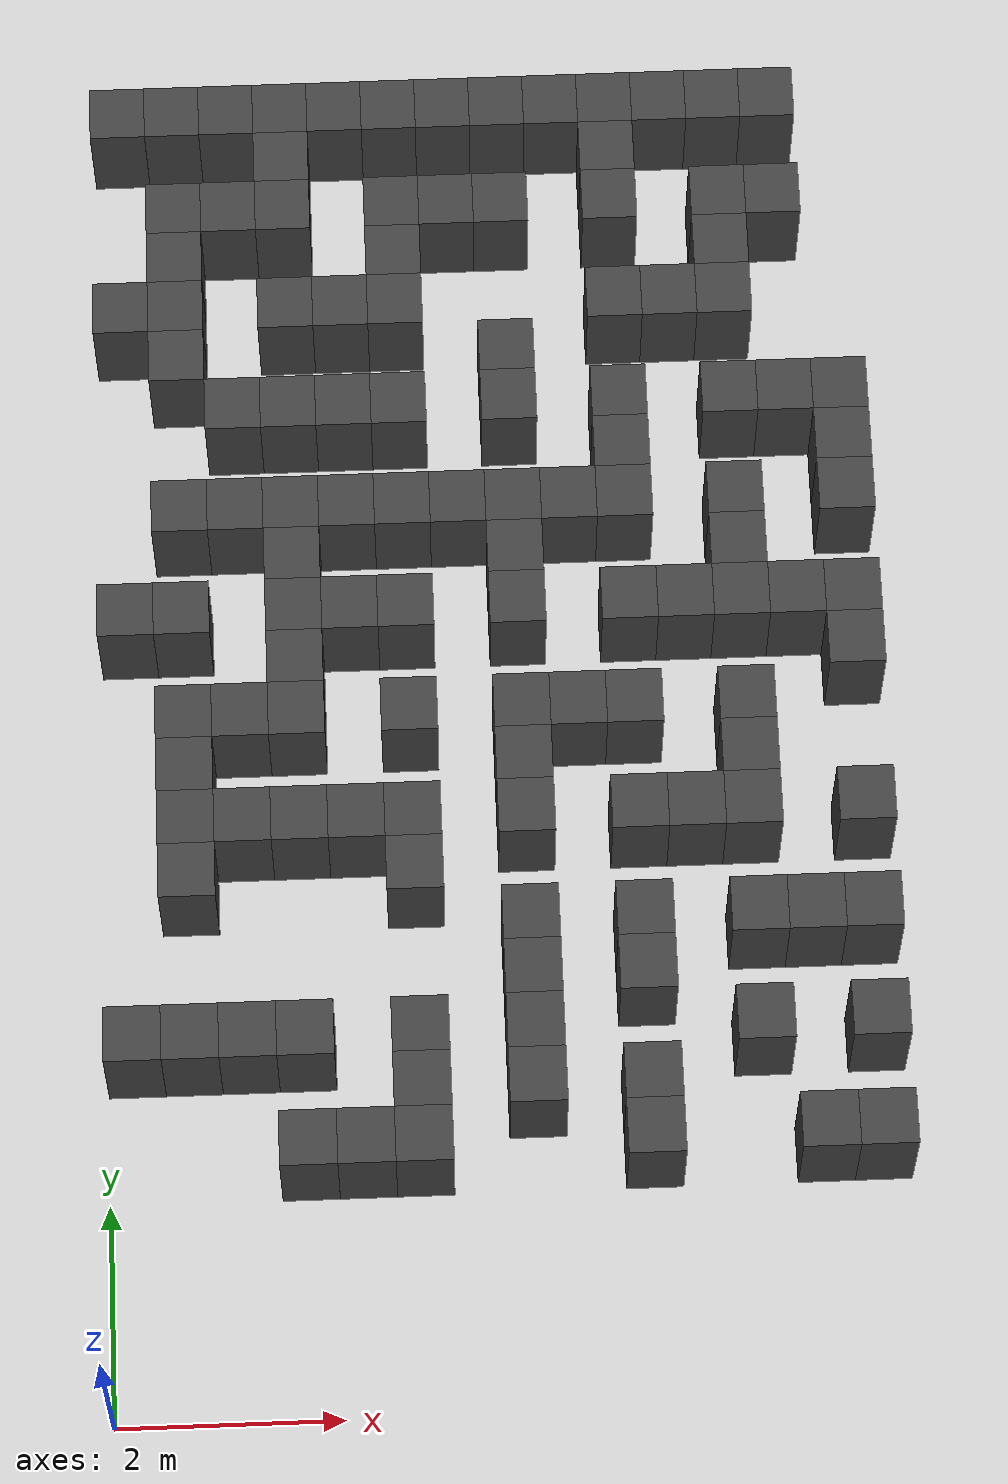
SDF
<sdf version="1.7">
 <world name="map_15497">
  <model name="ground_plane">
   <static>true</static>
   <link name="link">
    <collision name="collision">
     <geometry><plane><normal>0 0 1</normal><size>200 200</size></plane></geometry>
    </collision>
    <visual name="visual">
     <geometry><plane><normal>0 0 1</normal><size>200 200</size></plane></geometry>
     <material><ambient>0.8 0.8 0.8 1</ambient><diffuse>0.8 0.8 0.8 1</diffuse></material>
    </visual>
   </link>
  </model>
  <model name="maze_environment">
   <static>true</static>
   <link name="wall_25">
    <pose>0.250 12.250 0.500 0 0 0</pose>
    <collision name="col"><geometry><box><size>0.5 0.5 1.0</size></box></geometry></collision>
    <visual name="vis">
     <geometry><box><size>0.5 0.5 1.0</size></box></geometry>
     <material><ambient>0.15 0.15 0.15 1</ambient><diffuse>0.25 0.25 0.25 1</diffuse></material>
    </visual>
   </link>
   <link name="wall_26">
    <pose>0.750 12.250 0.500 0 0 0</pose>
    <collision name="col"><geometry><box><size>0.5 0.5 1.0</size></box></geometry></collision>
    <visual name="vis">
     <geometry><box><size>0.5 0.5 1.0</size></box></geometry>
     <material><ambient>0.15 0.15 0.15 1</ambient><diffuse>0.25 0.25 0.25 1</diffuse></material>
    </visual>
   </link>
   <link name="wall_27">
    <pose>1.250 12.250 0.500 0 0 0</pose>
    <collision name="col"><geometry><box><size>0.5 0.5 1.0</size></box></geometry></collision>
    <visual name="vis">
     <geometry><box><size>0.5 0.5 1.0</size></box></geometry>
     <material><ambient>0.15 0.15 0.15 1</ambient><diffuse>0.25 0.25 0.25 1</diffuse></material>
    </visual>
   </link>
   <link name="wall_28">
    <pose>1.750 12.250 0.500 0 0 0</pose>
    <collision name="col"><geometry><box><size>0.5 0.5 1.0</size></box></geometry></collision>
    <visual name="vis">
     <geometry><box><size>0.5 0.5 1.0</size></box></geometry>
     <material><ambient>0.15 0.15 0.15 1</ambient><diffuse>0.25 0.25 0.25 1</diffuse></material>
    </visual>
   </link>
   <link name="wall_29">
    <pose>2.250 12.250 0.500 0 0 0</pose>
    <collision name="col"><geometry><box><size>0.5 0.5 1.0</size></box></geometry></collision>
    <visual name="vis">
     <geometry><box><size>0.5 0.5 1.0</size></box></geometry>
     <material><ambient>0.15 0.15 0.15 1</ambient><diffuse>0.25 0.25 0.25 1</diffuse></material>
    </visual>
   </link>
   <link name="wall_30">
    <pose>2.750 12.250 0.500 0 0 0</pose>
    <collision name="col"><geometry><box><size>0.5 0.5 1.0</size></box></geometry></collision>
    <visual name="vis">
     <geometry><box><size>0.5 0.5 1.0</size></box></geometry>
     <material><ambient>0.15 0.15 0.15 1</ambient><diffuse>0.25 0.25 0.25 1</diffuse></material>
    </visual>
   </link>
   <link name="wall_31">
    <pose>3.250 12.250 0.500 0 0 0</pose>
    <collision name="col"><geometry><box><size>0.5 0.5 1.0</size></box></geometry></collision>
    <visual name="vis">
     <geometry><box><size>0.5 0.5 1.0</size></box></geometry>
     <material><ambient>0.15 0.15 0.15 1</ambient><diffuse>0.25 0.25 0.25 1</diffuse></material>
    </visual>
   </link>
   <link name="wall_32">
    <pose>3.750 12.250 0.500 0 0 0</pose>
    <collision name="col"><geometry><box><size>0.5 0.5 1.0</size></box></geometry></collision>
    <visual name="vis">
     <geometry><box><size>0.5 0.5 1.0</size></box></geometry>
     <material><ambient>0.15 0.15 0.15 1</ambient><diffuse>0.25 0.25 0.25 1</diffuse></material>
    </visual>
   </link>
   <link name="wall_33">
    <pose>4.250 12.250 0.500 0 0 0</pose>
    <collision name="col"><geometry><box><size>0.5 0.5 1.0</size></box></geometry></collision>
    <visual name="vis">
     <geometry><box><size>0.5 0.5 1.0</size></box></geometry>
     <material><ambient>0.15 0.15 0.15 1</ambient><diffuse>0.25 0.25 0.25 1</diffuse></material>
    </visual>
   </link>
   <link name="wall_34">
    <pose>4.750 12.250 0.500 0 0 0</pose>
    <collision name="col"><geometry><box><size>0.5 0.5 1.0</size></box></geometry></collision>
    <visual name="vis">
     <geometry><box><size>0.5 0.5 1.0</size></box></geometry>
     <material><ambient>0.15 0.15 0.15 1</ambient><diffuse>0.25 0.25 0.25 1</diffuse></material>
    </visual>
   </link>
   <link name="wall_35">
    <pose>5.250 12.250 0.500 0 0 0</pose>
    <collision name="col"><geometry><box><size>0.5 0.5 1.0</size></box></geometry></collision>
    <visual name="vis">
     <geometry><box><size>0.5 0.5 1.0</size></box></geometry>
     <material><ambient>0.15 0.15 0.15 1</ambient><diffuse>0.25 0.25 0.25 1</diffuse></material>
    </visual>
   </link>
   <link name="wall_36">
    <pose>5.750 12.250 0.500 0 0 0</pose>
    <collision name="col"><geometry><box><size>0.5 0.5 1.0</size></box></geometry></collision>
    <visual name="vis">
     <geometry><box><size>0.5 0.5 1.0</size></box></geometry>
     <material><ambient>0.15 0.15 0.15 1</ambient><diffuse>0.25 0.25 0.25 1</diffuse></material>
    </visual>
   </link>
   <link name="wall_37">
    <pose>6.250 12.250 0.500 0 0 0</pose>
    <collision name="col"><geometry><box><size>0.5 0.5 1.0</size></box></geometry></collision>
    <visual name="vis">
     <geometry><box><size>0.5 0.5 1.0</size></box></geometry>
     <material><ambient>0.15 0.15 0.15 1</ambient><diffuse>0.25 0.25 0.25 1</diffuse></material>
    </visual>
   </link>
   <link name="wall_54">
    <pose>1.750 11.750 0.500 0 0 0</pose>
    <collision name="col"><geometry><box><size>0.5 0.5 1.0</size></box></geometry></collision>
    <visual name="vis">
     <geometry><box><size>0.5 0.5 1.0</size></box></geometry>
     <material><ambient>0.15 0.15 0.15 1</ambient><diffuse>0.25 0.25 0.25 1</diffuse></material>
    </visual>
   </link>
   <link name="wall_55">
    <pose>4.750 11.750 0.500 0 0 0</pose>
    <collision name="col"><geometry><box><size>0.5 0.5 1.0</size></box></geometry></collision>
    <visual name="vis">
     <geometry><box><size>0.5 0.5 1.0</size></box></geometry>
     <material><ambient>0.15 0.15 0.15 1</ambient><diffuse>0.25 0.25 0.25 1</diffuse></material>
    </visual>
   </link>
   <link name="wall_75">
    <pose>0.750 11.250 0.500 0 0 0</pose>
    <collision name="col"><geometry><box><size>0.5 0.5 1.0</size></box></geometry></collision>
    <visual name="vis">
     <geometry><box><size>0.5 0.5 1.0</size></box></geometry>
     <material><ambient>0.15 0.15 0.15 1</ambient><diffuse>0.25 0.25 0.25 1</diffuse></material>
    </visual>
   </link>
   <link name="wall_76">
    <pose>1.250 11.250 0.500 0 0 0</pose>
    <collision name="col"><geometry><box><size>0.5 0.5 1.0</size></box></geometry></collision>
    <visual name="vis">
     <geometry><box><size>0.5 0.5 1.0</size></box></geometry>
     <material><ambient>0.15 0.15 0.15 1</ambient><diffuse>0.25 0.25 0.25 1</diffuse></material>
    </visual>
   </link>
   <link name="wall_77">
    <pose>1.750 11.250 0.500 0 0 0</pose>
    <collision name="col"><geometry><box><size>0.5 0.5 1.0</size></box></geometry></collision>
    <visual name="vis">
     <geometry><box><size>0.5 0.5 1.0</size></box></geometry>
     <material><ambient>0.15 0.15 0.15 1</ambient><diffuse>0.25 0.25 0.25 1</diffuse></material>
    </visual>
   </link>
   <link name="wall_78">
    <pose>2.750 11.250 0.500 0 0 0</pose>
    <collision name="col"><geometry><box><size>0.5 0.5 1.0</size></box></geometry></collision>
    <visual name="vis">
     <geometry><box><size>0.5 0.5 1.0</size></box></geometry>
     <material><ambient>0.15 0.15 0.15 1</ambient><diffuse>0.25 0.25 0.25 1</diffuse></material>
    </visual>
   </link>
   <link name="wall_79">
    <pose>3.250 11.250 0.500 0 0 0</pose>
    <collision name="col"><geometry><box><size>0.5 0.5 1.0</size></box></geometry></collision>
    <visual name="vis">
     <geometry><box><size>0.5 0.5 1.0</size></box></geometry>
     <material><ambient>0.15 0.15 0.15 1</ambient><diffuse>0.25 0.25 0.25 1</diffuse></material>
    </visual>
   </link>
   <link name="wall_80">
    <pose>3.750 11.250 0.500 0 0 0</pose>
    <collision name="col"><geometry><box><size>0.5 0.5 1.0</size></box></geometry></collision>
    <visual name="vis">
     <geometry><box><size>0.5 0.5 1.0</size></box></geometry>
     <material><ambient>0.15 0.15 0.15 1</ambient><diffuse>0.25 0.25 0.25 1</diffuse></material>
    </visual>
   </link>
   <link name="wall_81">
    <pose>4.750 11.250 0.500 0 0 0</pose>
    <collision name="col"><geometry><box><size>0.5 0.5 1.0</size></box></geometry></collision>
    <visual name="vis">
     <geometry><box><size>0.5 0.5 1.0</size></box></geometry>
     <material><ambient>0.15 0.15 0.15 1</ambient><diffuse>0.25 0.25 0.25 1</diffuse></material>
    </visual>
   </link>
   <link name="wall_82">
    <pose>5.750 11.250 0.500 0 0 0</pose>
    <collision name="col"><geometry><box><size>0.5 0.5 1.0</size></box></geometry></collision>
    <visual name="vis">
     <geometry><box><size>0.5 0.5 1.0</size></box></geometry>
     <material><ambient>0.15 0.15 0.15 1</ambient><diffuse>0.25 0.25 0.25 1</diffuse></material>
    </visual>
   </link>
   <link name="wall_83">
    <pose>6.250 11.250 0.500 0 0 0</pose>
    <collision name="col"><geometry><box><size>0.5 0.5 1.0</size></box></geometry></collision>
    <visual name="vis">
     <geometry><box><size>0.5 0.5 1.0</size></box></geometry>
     <material><ambient>0.15 0.15 0.15 1</ambient><diffuse>0.25 0.25 0.25 1</diffuse></material>
    </visual>
   </link>
   <link name="wall_97">
    <pose>0.750 10.750 0.500 0 0 0</pose>
    <collision name="col"><geometry><box><size>0.5 0.5 1.0</size></box></geometry></collision>
    <visual name="vis">
     <geometry><box><size>0.5 0.5 1.0</size></box></geometry>
     <material><ambient>0.15 0.15 0.15 1</ambient><diffuse>0.25 0.25 0.25 1</diffuse></material>
    </visual>
   </link>
   <link name="wall_98">
    <pose>2.750 10.750 0.500 0 0 0</pose>
    <collision name="col"><geometry><box><size>0.5 0.5 1.0</size></box></geometry></collision>
    <visual name="vis">
     <geometry><box><size>0.5 0.5 1.0</size></box></geometry>
     <material><ambient>0.15 0.15 0.15 1</ambient><diffuse>0.25 0.25 0.25 1</diffuse></material>
    </visual>
   </link>
   <link name="wall_99">
    <pose>5.750 10.750 0.500 0 0 0</pose>
    <collision name="col"><geometry><box><size>0.5 0.5 1.0</size></box></geometry></collision>
    <visual name="vis">
     <geometry><box><size>0.5 0.5 1.0</size></box></geometry>
     <material><ambient>0.15 0.15 0.15 1</ambient><diffuse>0.25 0.25 0.25 1</diffuse></material>
    </visual>
   </link>
   <link name="wall_123">
    <pose>0.250 10.250 0.500 0 0 0</pose>
    <collision name="col"><geometry><box><size>0.5 0.5 1.0</size></box></geometry></collision>
    <visual name="vis">
     <geometry><box><size>0.5 0.5 1.0</size></box></geometry>
     <material><ambient>0.15 0.15 0.15 1</ambient><diffuse>0.25 0.25 0.25 1</diffuse></material>
    </visual>
   </link>
   <link name="wall_124">
    <pose>0.750 10.250 0.500 0 0 0</pose>
    <collision name="col"><geometry><box><size>0.5 0.5 1.0</size></box></geometry></collision>
    <visual name="vis">
     <geometry><box><size>0.5 0.5 1.0</size></box></geometry>
     <material><ambient>0.15 0.15 0.15 1</ambient><diffuse>0.25 0.25 0.25 1</diffuse></material>
    </visual>
   </link>
   <link name="wall_125">
    <pose>1.750 10.250 0.500 0 0 0</pose>
    <collision name="col"><geometry><box><size>0.5 0.5 1.0</size></box></geometry></collision>
    <visual name="vis">
     <geometry><box><size>0.5 0.5 1.0</size></box></geometry>
     <material><ambient>0.15 0.15 0.15 1</ambient><diffuse>0.25 0.25 0.25 1</diffuse></material>
    </visual>
   </link>
   <link name="wall_126">
    <pose>2.250 10.250 0.500 0 0 0</pose>
    <collision name="col"><geometry><box><size>0.5 0.5 1.0</size></box></geometry></collision>
    <visual name="vis">
     <geometry><box><size>0.5 0.5 1.0</size></box></geometry>
     <material><ambient>0.15 0.15 0.15 1</ambient><diffuse>0.25 0.25 0.25 1</diffuse></material>
    </visual>
   </link>
   <link name="wall_127">
    <pose>2.750 10.250 0.500 0 0 0</pose>
    <collision name="col"><geometry><box><size>0.5 0.5 1.0</size></box></geometry></collision>
    <visual name="vis">
     <geometry><box><size>0.5 0.5 1.0</size></box></geometry>
     <material><ambient>0.15 0.15 0.15 1</ambient><diffuse>0.25 0.25 0.25 1</diffuse></material>
    </visual>
   </link>
   <link name="wall_128">
    <pose>4.750 10.250 0.500 0 0 0</pose>
    <collision name="col"><geometry><box><size>0.5 0.5 1.0</size></box></geometry></collision>
    <visual name="vis">
     <geometry><box><size>0.5 0.5 1.0</size></box></geometry>
     <material><ambient>0.15 0.15 0.15 1</ambient><diffuse>0.25 0.25 0.25 1</diffuse></material>
    </visual>
   </link>
   <link name="wall_129">
    <pose>5.250 10.250 0.500 0 0 0</pose>
    <collision name="col"><geometry><box><size>0.5 0.5 1.0</size></box></geometry></collision>
    <visual name="vis">
     <geometry><box><size>0.5 0.5 1.0</size></box></geometry>
     <material><ambient>0.15 0.15 0.15 1</ambient><diffuse>0.25 0.25 0.25 1</diffuse></material>
    </visual>
   </link>
   <link name="wall_130">
    <pose>5.750 10.250 0.500 0 0 0</pose>
    <collision name="col"><geometry><box><size>0.5 0.5 1.0</size></box></geometry></collision>
    <visual name="vis">
     <geometry><box><size>0.5 0.5 1.0</size></box></geometry>
     <material><ambient>0.15 0.15 0.15 1</ambient><diffuse>0.25 0.25 0.25 1</diffuse></material>
    </visual>
   </link>
   <link name="wall_143">
    <pose>0.750 9.750 0.500 0 0 0</pose>
    <collision name="col"><geometry><box><size>0.5 0.5 1.0</size></box></geometry></collision>
    <visual name="vis">
     <geometry><box><size>0.5 0.5 1.0</size></box></geometry>
     <material><ambient>0.15 0.15 0.15 1</ambient><diffuse>0.25 0.25 0.25 1</diffuse></material>
    </visual>
   </link>
   <link name="wall_144">
    <pose>3.750 9.750 0.500 0 0 0</pose>
    <collision name="col"><geometry><box><size>0.5 0.5 1.0</size></box></geometry></collision>
    <visual name="vis">
     <geometry><box><size>0.5 0.5 1.0</size></box></geometry>
     <material><ambient>0.15 0.15 0.15 1</ambient><diffuse>0.25 0.25 0.25 1</diffuse></material>
    </visual>
   </link>
   <link name="wall_169">
    <pose>1.250 9.250 0.500 0 0 0</pose>
    <collision name="col"><geometry><box><size>0.5 0.5 1.0</size></box></geometry></collision>
    <visual name="vis">
     <geometry><box><size>0.5 0.5 1.0</size></box></geometry>
     <material><ambient>0.15 0.15 0.15 1</ambient><diffuse>0.25 0.25 0.25 1</diffuse></material>
    </visual>
   </link>
   <link name="wall_170">
    <pose>1.750 9.250 0.500 0 0 0</pose>
    <collision name="col"><geometry><box><size>0.5 0.5 1.0</size></box></geometry></collision>
    <visual name="vis">
     <geometry><box><size>0.5 0.5 1.0</size></box></geometry>
     <material><ambient>0.15 0.15 0.15 1</ambient><diffuse>0.25 0.25 0.25 1</diffuse></material>
    </visual>
   </link>
   <link name="wall_171">
    <pose>2.250 9.250 0.500 0 0 0</pose>
    <collision name="col"><geometry><box><size>0.5 0.5 1.0</size></box></geometry></collision>
    <visual name="vis">
     <geometry><box><size>0.5 0.5 1.0</size></box></geometry>
     <material><ambient>0.15 0.15 0.15 1</ambient><diffuse>0.25 0.25 0.25 1</diffuse></material>
    </visual>
   </link>
   <link name="wall_172">
    <pose>2.750 9.250 0.500 0 0 0</pose>
    <collision name="col"><geometry><box><size>0.5 0.5 1.0</size></box></geometry></collision>
    <visual name="vis">
     <geometry><box><size>0.5 0.5 1.0</size></box></geometry>
     <material><ambient>0.15 0.15 0.15 1</ambient><diffuse>0.25 0.25 0.25 1</diffuse></material>
    </visual>
   </link>
   <link name="wall_173">
    <pose>3.750 9.250 0.500 0 0 0</pose>
    <collision name="col"><geometry><box><size>0.5 0.5 1.0</size></box></geometry></collision>
    <visual name="vis">
     <geometry><box><size>0.5 0.5 1.0</size></box></geometry>
     <material><ambient>0.15 0.15 0.15 1</ambient><diffuse>0.25 0.25 0.25 1</diffuse></material>
    </visual>
   </link>
   <link name="wall_174">
    <pose>4.750 9.250 0.500 0 0 0</pose>
    <collision name="col"><geometry><box><size>0.5 0.5 1.0</size></box></geometry></collision>
    <visual name="vis">
     <geometry><box><size>0.5 0.5 1.0</size></box></geometry>
     <material><ambient>0.15 0.15 0.15 1</ambient><diffuse>0.25 0.25 0.25 1</diffuse></material>
    </visual>
   </link>
   <link name="wall_175">
    <pose>5.750 9.250 0.500 0 0 0</pose>
    <collision name="col"><geometry><box><size>0.5 0.5 1.0</size></box></geometry></collision>
    <visual name="vis">
     <geometry><box><size>0.5 0.5 1.0</size></box></geometry>
     <material><ambient>0.15 0.15 0.15 1</ambient><diffuse>0.25 0.25 0.25 1</diffuse></material>
    </visual>
   </link>
   <link name="wall_176">
    <pose>6.250 9.250 0.500 0 0 0</pose>
    <collision name="col"><geometry><box><size>0.5 0.5 1.0</size></box></geometry></collision>
    <visual name="vis">
     <geometry><box><size>0.5 0.5 1.0</size></box></geometry>
     <material><ambient>0.15 0.15 0.15 1</ambient><diffuse>0.25 0.25 0.25 1</diffuse></material>
    </visual>
   </link>
   <link name="wall_177">
    <pose>6.750 9.250 0.500 0 0 0</pose>
    <collision name="col"><geometry><box><size>0.5 0.5 1.0</size></box></geometry></collision>
    <visual name="vis">
     <geometry><box><size>0.5 0.5 1.0</size></box></geometry>
     <material><ambient>0.15 0.15 0.15 1</ambient><diffuse>0.25 0.25 0.25 1</diffuse></material>
    </visual>
   </link>
   <link name="wall_190">
    <pose>4.750 8.750 0.500 0 0 0</pose>
    <collision name="col"><geometry><box><size>0.5 0.5 1.0</size></box></geometry></collision>
    <visual name="vis">
     <geometry><box><size>0.5 0.5 1.0</size></box></geometry>
     <material><ambient>0.15 0.15 0.15 1</ambient><diffuse>0.25 0.25 0.25 1</diffuse></material>
    </visual>
   </link>
   <link name="wall_191">
    <pose>6.750 8.750 0.500 0 0 0</pose>
    <collision name="col"><geometry><box><size>0.5 0.5 1.0</size></box></geometry></collision>
    <visual name="vis">
     <geometry><box><size>0.5 0.5 1.0</size></box></geometry>
     <material><ambient>0.15 0.15 0.15 1</ambient><diffuse>0.25 0.25 0.25 1</diffuse></material>
    </visual>
   </link>
   <link name="wall_212">
    <pose>0.750 8.250 0.500 0 0 0</pose>
    <collision name="col"><geometry><box><size>0.5 0.5 1.0</size></box></geometry></collision>
    <visual name="vis">
     <geometry><box><size>0.5 0.5 1.0</size></box></geometry>
     <material><ambient>0.15 0.15 0.15 1</ambient><diffuse>0.25 0.25 0.25 1</diffuse></material>
    </visual>
   </link>
   <link name="wall_213">
    <pose>1.250 8.250 0.500 0 0 0</pose>
    <collision name="col"><geometry><box><size>0.5 0.5 1.0</size></box></geometry></collision>
    <visual name="vis">
     <geometry><box><size>0.5 0.5 1.0</size></box></geometry>
     <material><ambient>0.15 0.15 0.15 1</ambient><diffuse>0.25 0.25 0.25 1</diffuse></material>
    </visual>
   </link>
   <link name="wall_214">
    <pose>1.750 8.250 0.500 0 0 0</pose>
    <collision name="col"><geometry><box><size>0.5 0.5 1.0</size></box></geometry></collision>
    <visual name="vis">
     <geometry><box><size>0.5 0.5 1.0</size></box></geometry>
     <material><ambient>0.15 0.15 0.15 1</ambient><diffuse>0.25 0.25 0.25 1</diffuse></material>
    </visual>
   </link>
   <link name="wall_215">
    <pose>2.250 8.250 0.500 0 0 0</pose>
    <collision name="col"><geometry><box><size>0.5 0.5 1.0</size></box></geometry></collision>
    <visual name="vis">
     <geometry><box><size>0.5 0.5 1.0</size></box></geometry>
     <material><ambient>0.15 0.15 0.15 1</ambient><diffuse>0.25 0.25 0.25 1</diffuse></material>
    </visual>
   </link>
   <link name="wall_216">
    <pose>2.750 8.250 0.500 0 0 0</pose>
    <collision name="col"><geometry><box><size>0.5 0.5 1.0</size></box></geometry></collision>
    <visual name="vis">
     <geometry><box><size>0.5 0.5 1.0</size></box></geometry>
     <material><ambient>0.15 0.15 0.15 1</ambient><diffuse>0.25 0.25 0.25 1</diffuse></material>
    </visual>
   </link>
   <link name="wall_217">
    <pose>3.250 8.250 0.500 0 0 0</pose>
    <collision name="col"><geometry><box><size>0.5 0.5 1.0</size></box></geometry></collision>
    <visual name="vis">
     <geometry><box><size>0.5 0.5 1.0</size></box></geometry>
     <material><ambient>0.15 0.15 0.15 1</ambient><diffuse>0.25 0.25 0.25 1</diffuse></material>
    </visual>
   </link>
   <link name="wall_218">
    <pose>3.750 8.250 0.500 0 0 0</pose>
    <collision name="col"><geometry><box><size>0.5 0.5 1.0</size></box></geometry></collision>
    <visual name="vis">
     <geometry><box><size>0.5 0.5 1.0</size></box></geometry>
     <material><ambient>0.15 0.15 0.15 1</ambient><diffuse>0.25 0.25 0.25 1</diffuse></material>
    </visual>
   </link>
   <link name="wall_219">
    <pose>4.250 8.250 0.500 0 0 0</pose>
    <collision name="col"><geometry><box><size>0.5 0.5 1.0</size></box></geometry></collision>
    <visual name="vis">
     <geometry><box><size>0.5 0.5 1.0</size></box></geometry>
     <material><ambient>0.15 0.15 0.15 1</ambient><diffuse>0.25 0.25 0.25 1</diffuse></material>
    </visual>
   </link>
   <link name="wall_220">
    <pose>4.750 8.250 0.500 0 0 0</pose>
    <collision name="col"><geometry><box><size>0.5 0.5 1.0</size></box></geometry></collision>
    <visual name="vis">
     <geometry><box><size>0.5 0.5 1.0</size></box></geometry>
     <material><ambient>0.15 0.15 0.15 1</ambient><diffuse>0.25 0.25 0.25 1</diffuse></material>
    </visual>
   </link>
   <link name="wall_221">
    <pose>5.750 8.250 0.500 0 0 0</pose>
    <collision name="col"><geometry><box><size>0.5 0.5 1.0</size></box></geometry></collision>
    <visual name="vis">
     <geometry><box><size>0.5 0.5 1.0</size></box></geometry>
     <material><ambient>0.15 0.15 0.15 1</ambient><diffuse>0.25 0.25 0.25 1</diffuse></material>
    </visual>
   </link>
   <link name="wall_222">
    <pose>6.750 8.250 0.500 0 0 0</pose>
    <collision name="col"><geometry><box><size>0.5 0.5 1.0</size></box></geometry></collision>
    <visual name="vis">
     <geometry><box><size>0.5 0.5 1.0</size></box></geometry>
     <material><ambient>0.15 0.15 0.15 1</ambient><diffuse>0.25 0.25 0.25 1</diffuse></material>
    </visual>
   </link>
   <link name="wall_233">
    <pose>1.750 7.750 0.500 0 0 0</pose>
    <collision name="col"><geometry><box><size>0.5 0.5 1.0</size></box></geometry></collision>
    <visual name="vis">
     <geometry><box><size>0.5 0.5 1.0</size></box></geometry>
     <material><ambient>0.15 0.15 0.15 1</ambient><diffuse>0.25 0.25 0.25 1</diffuse></material>
    </visual>
   </link>
   <link name="wall_234">
    <pose>3.750 7.750 0.500 0 0 0</pose>
    <collision name="col"><geometry><box><size>0.5 0.5 1.0</size></box></geometry></collision>
    <visual name="vis">
     <geometry><box><size>0.5 0.5 1.0</size></box></geometry>
     <material><ambient>0.15 0.15 0.15 1</ambient><diffuse>0.25 0.25 0.25 1</diffuse></material>
    </visual>
   </link>
   <link name="wall_235">
    <pose>5.750 7.750 0.500 0 0 0</pose>
    <collision name="col"><geometry><box><size>0.5 0.5 1.0</size></box></geometry></collision>
    <visual name="vis">
     <geometry><box><size>0.5 0.5 1.0</size></box></geometry>
     <material><ambient>0.15 0.15 0.15 1</ambient><diffuse>0.25 0.25 0.25 1</diffuse></material>
    </visual>
   </link>
   <link name="wall_253">
    <pose>0.250 7.250 0.500 0 0 0</pose>
    <collision name="col"><geometry><box><size>0.5 0.5 1.0</size></box></geometry></collision>
    <visual name="vis">
     <geometry><box><size>0.5 0.5 1.0</size></box></geometry>
     <material><ambient>0.15 0.15 0.15 1</ambient><diffuse>0.25 0.25 0.25 1</diffuse></material>
    </visual>
   </link>
   <link name="wall_254">
    <pose>0.750 7.250 0.500 0 0 0</pose>
    <collision name="col"><geometry><box><size>0.5 0.5 1.0</size></box></geometry></collision>
    <visual name="vis">
     <geometry><box><size>0.5 0.5 1.0</size></box></geometry>
     <material><ambient>0.15 0.15 0.15 1</ambient><diffuse>0.25 0.25 0.25 1</diffuse></material>
    </visual>
   </link>
   <link name="wall_255">
    <pose>1.750 7.250 0.500 0 0 0</pose>
    <collision name="col"><geometry><box><size>0.5 0.5 1.0</size></box></geometry></collision>
    <visual name="vis">
     <geometry><box><size>0.5 0.5 1.0</size></box></geometry>
     <material><ambient>0.15 0.15 0.15 1</ambient><diffuse>0.25 0.25 0.25 1</diffuse></material>
    </visual>
   </link>
   <link name="wall_256">
    <pose>2.250 7.250 0.500 0 0 0</pose>
    <collision name="col"><geometry><box><size>0.5 0.5 1.0</size></box></geometry></collision>
    <visual name="vis">
     <geometry><box><size>0.5 0.5 1.0</size></box></geometry>
     <material><ambient>0.15 0.15 0.15 1</ambient><diffuse>0.25 0.25 0.25 1</diffuse></material>
    </visual>
   </link>
   <link name="wall_257">
    <pose>2.750 7.250 0.500 0 0 0</pose>
    <collision name="col"><geometry><box><size>0.5 0.5 1.0</size></box></geometry></collision>
    <visual name="vis">
     <geometry><box><size>0.5 0.5 1.0</size></box></geometry>
     <material><ambient>0.15 0.15 0.15 1</ambient><diffuse>0.25 0.25 0.25 1</diffuse></material>
    </visual>
   </link>
   <link name="wall_258">
    <pose>3.750 7.250 0.500 0 0 0</pose>
    <collision name="col"><geometry><box><size>0.5 0.5 1.0</size></box></geometry></collision>
    <visual name="vis">
     <geometry><box><size>0.5 0.5 1.0</size></box></geometry>
     <material><ambient>0.15 0.15 0.15 1</ambient><diffuse>0.25 0.25 0.25 1</diffuse></material>
    </visual>
   </link>
   <link name="wall_259">
    <pose>4.750 7.250 0.500 0 0 0</pose>
    <collision name="col"><geometry><box><size>0.5 0.5 1.0</size></box></geometry></collision>
    <visual name="vis">
     <geometry><box><size>0.5 0.5 1.0</size></box></geometry>
     <material><ambient>0.15 0.15 0.15 1</ambient><diffuse>0.25 0.25 0.25 1</diffuse></material>
    </visual>
   </link>
   <link name="wall_260">
    <pose>5.250 7.250 0.500 0 0 0</pose>
    <collision name="col"><geometry><box><size>0.5 0.5 1.0</size></box></geometry></collision>
    <visual name="vis">
     <geometry><box><size>0.5 0.5 1.0</size></box></geometry>
     <material><ambient>0.15 0.15 0.15 1</ambient><diffuse>0.25 0.25 0.25 1</diffuse></material>
    </visual>
   </link>
   <link name="wall_261">
    <pose>5.750 7.250 0.500 0 0 0</pose>
    <collision name="col"><geometry><box><size>0.5 0.5 1.0</size></box></geometry></collision>
    <visual name="vis">
     <geometry><box><size>0.5 0.5 1.0</size></box></geometry>
     <material><ambient>0.15 0.15 0.15 1</ambient><diffuse>0.25 0.25 0.25 1</diffuse></material>
    </visual>
   </link>
   <link name="wall_262">
    <pose>6.250 7.250 0.500 0 0 0</pose>
    <collision name="col"><geometry><box><size>0.5 0.5 1.0</size></box></geometry></collision>
    <visual name="vis">
     <geometry><box><size>0.5 0.5 1.0</size></box></geometry>
     <material><ambient>0.15 0.15 0.15 1</ambient><diffuse>0.25 0.25 0.25 1</diffuse></material>
    </visual>
   </link>
   <link name="wall_263">
    <pose>6.750 7.250 0.500 0 0 0</pose>
    <collision name="col"><geometry><box><size>0.5 0.5 1.0</size></box></geometry></collision>
    <visual name="vis">
     <geometry><box><size>0.5 0.5 1.0</size></box></geometry>
     <material><ambient>0.15 0.15 0.15 1</ambient><diffuse>0.25 0.25 0.25 1</diffuse></material>
    </visual>
   </link>
   <link name="wall_278">
    <pose>1.750 6.750 0.500 0 0 0</pose>
    <collision name="col"><geometry><box><size>0.5 0.5 1.0</size></box></geometry></collision>
    <visual name="vis">
     <geometry><box><size>0.5 0.5 1.0</size></box></geometry>
     <material><ambient>0.15 0.15 0.15 1</ambient><diffuse>0.25 0.25 0.25 1</diffuse></material>
    </visual>
   </link>
   <link name="wall_279">
    <pose>6.750 6.750 0.500 0 0 0</pose>
    <collision name="col"><geometry><box><size>0.5 0.5 1.0</size></box></geometry></collision>
    <visual name="vis">
     <geometry><box><size>0.5 0.5 1.0</size></box></geometry>
     <material><ambient>0.15 0.15 0.15 1</ambient><diffuse>0.25 0.25 0.25 1</diffuse></material>
    </visual>
   </link>
   <link name="wall_304">
    <pose>0.750 6.250 0.500 0 0 0</pose>
    <collision name="col"><geometry><box><size>0.5 0.5 1.0</size></box></geometry></collision>
    <visual name="vis">
     <geometry><box><size>0.5 0.5 1.0</size></box></geometry>
     <material><ambient>0.15 0.15 0.15 1</ambient><diffuse>0.25 0.25 0.25 1</diffuse></material>
    </visual>
   </link>
   <link name="wall_305">
    <pose>1.250 6.250 0.500 0 0 0</pose>
    <collision name="col"><geometry><box><size>0.5 0.5 1.0</size></box></geometry></collision>
    <visual name="vis">
     <geometry><box><size>0.5 0.5 1.0</size></box></geometry>
     <material><ambient>0.15 0.15 0.15 1</ambient><diffuse>0.25 0.25 0.25 1</diffuse></material>
    </visual>
   </link>
   <link name="wall_306">
    <pose>1.750 6.250 0.500 0 0 0</pose>
    <collision name="col"><geometry><box><size>0.5 0.5 1.0</size></box></geometry></collision>
    <visual name="vis">
     <geometry><box><size>0.5 0.5 1.0</size></box></geometry>
     <material><ambient>0.15 0.15 0.15 1</ambient><diffuse>0.25 0.25 0.25 1</diffuse></material>
    </visual>
   </link>
   <link name="wall_307">
    <pose>2.750 6.250 0.500 0 0 0</pose>
    <collision name="col"><geometry><box><size>0.5 0.5 1.0</size></box></geometry></collision>
    <visual name="vis">
     <geometry><box><size>0.5 0.5 1.0</size></box></geometry>
     <material><ambient>0.15 0.15 0.15 1</ambient><diffuse>0.25 0.25 0.25 1</diffuse></material>
    </visual>
   </link>
   <link name="wall_308">
    <pose>3.750 6.250 0.500 0 0 0</pose>
    <collision name="col"><geometry><box><size>0.5 0.5 1.0</size></box></geometry></collision>
    <visual name="vis">
     <geometry><box><size>0.5 0.5 1.0</size></box></geometry>
     <material><ambient>0.15 0.15 0.15 1</ambient><diffuse>0.25 0.25 0.25 1</diffuse></material>
    </visual>
   </link>
   <link name="wall_309">
    <pose>4.250 6.250 0.500 0 0 0</pose>
    <collision name="col"><geometry><box><size>0.5 0.5 1.0</size></box></geometry></collision>
    <visual name="vis">
     <geometry><box><size>0.5 0.5 1.0</size></box></geometry>
     <material><ambient>0.15 0.15 0.15 1</ambient><diffuse>0.25 0.25 0.25 1</diffuse></material>
    </visual>
   </link>
   <link name="wall_310">
    <pose>4.750 6.250 0.500 0 0 0</pose>
    <collision name="col"><geometry><box><size>0.5 0.5 1.0</size></box></geometry></collision>
    <visual name="vis">
     <geometry><box><size>0.5 0.5 1.0</size></box></geometry>
     <material><ambient>0.15 0.15 0.15 1</ambient><diffuse>0.25 0.25 0.25 1</diffuse></material>
    </visual>
   </link>
   <link name="wall_311">
    <pose>5.750 6.250 0.500 0 0 0</pose>
    <collision name="col"><geometry><box><size>0.5 0.5 1.0</size></box></geometry></collision>
    <visual name="vis">
     <geometry><box><size>0.5 0.5 1.0</size></box></geometry>
     <material><ambient>0.15 0.15 0.15 1</ambient><diffuse>0.25 0.25 0.25 1</diffuse></material>
    </visual>
   </link>
   <link name="wall_327">
    <pose>0.750 5.750 0.500 0 0 0</pose>
    <collision name="col"><geometry><box><size>0.5 0.5 1.0</size></box></geometry></collision>
    <visual name="vis">
     <geometry><box><size>0.5 0.5 1.0</size></box></geometry>
     <material><ambient>0.15 0.15 0.15 1</ambient><diffuse>0.25 0.25 0.25 1</diffuse></material>
    </visual>
   </link>
   <link name="wall_328">
    <pose>3.750 5.750 0.500 0 0 0</pose>
    <collision name="col"><geometry><box><size>0.5 0.5 1.0</size></box></geometry></collision>
    <visual name="vis">
     <geometry><box><size>0.5 0.5 1.0</size></box></geometry>
     <material><ambient>0.15 0.15 0.15 1</ambient><diffuse>0.25 0.25 0.25 1</diffuse></material>
    </visual>
   </link>
   <link name="wall_329">
    <pose>5.750 5.750 0.500 0 0 0</pose>
    <collision name="col"><geometry><box><size>0.5 0.5 1.0</size></box></geometry></collision>
    <visual name="vis">
     <geometry><box><size>0.5 0.5 1.0</size></box></geometry>
     <material><ambient>0.15 0.15 0.15 1</ambient><diffuse>0.25 0.25 0.25 1</diffuse></material>
    </visual>
   </link>
   <link name="wall_349">
    <pose>0.750 5.250 0.500 0 0 0</pose>
    <collision name="col"><geometry><box><size>0.5 0.5 1.0</size></box></geometry></collision>
    <visual name="vis">
     <geometry><box><size>0.5 0.5 1.0</size></box></geometry>
     <material><ambient>0.15 0.15 0.15 1</ambient><diffuse>0.25 0.25 0.25 1</diffuse></material>
    </visual>
   </link>
   <link name="wall_350">
    <pose>1.250 5.250 0.500 0 0 0</pose>
    <collision name="col"><geometry><box><size>0.5 0.5 1.0</size></box></geometry></collision>
    <visual name="vis">
     <geometry><box><size>0.5 0.5 1.0</size></box></geometry>
     <material><ambient>0.15 0.15 0.15 1</ambient><diffuse>0.25 0.25 0.25 1</diffuse></material>
    </visual>
   </link>
   <link name="wall_351">
    <pose>1.750 5.250 0.500 0 0 0</pose>
    <collision name="col"><geometry><box><size>0.5 0.5 1.0</size></box></geometry></collision>
    <visual name="vis">
     <geometry><box><size>0.5 0.5 1.0</size></box></geometry>
     <material><ambient>0.15 0.15 0.15 1</ambient><diffuse>0.25 0.25 0.25 1</diffuse></material>
    </visual>
   </link>
   <link name="wall_352">
    <pose>2.250 5.250 0.500 0 0 0</pose>
    <collision name="col"><geometry><box><size>0.5 0.5 1.0</size></box></geometry></collision>
    <visual name="vis">
     <geometry><box><size>0.5 0.5 1.0</size></box></geometry>
     <material><ambient>0.15 0.15 0.15 1</ambient><diffuse>0.25 0.25 0.25 1</diffuse></material>
    </visual>
   </link>
   <link name="wall_353">
    <pose>2.750 5.250 0.500 0 0 0</pose>
    <collision name="col"><geometry><box><size>0.5 0.5 1.0</size></box></geometry></collision>
    <visual name="vis">
     <geometry><box><size>0.5 0.5 1.0</size></box></geometry>
     <material><ambient>0.15 0.15 0.15 1</ambient><diffuse>0.25 0.25 0.25 1</diffuse></material>
    </visual>
   </link>
   <link name="wall_354">
    <pose>3.750 5.250 0.500 0 0 0</pose>
    <collision name="col"><geometry><box><size>0.5 0.5 1.0</size></box></geometry></collision>
    <visual name="vis">
     <geometry><box><size>0.5 0.5 1.0</size></box></geometry>
     <material><ambient>0.15 0.15 0.15 1</ambient><diffuse>0.25 0.25 0.25 1</diffuse></material>
    </visual>
   </link>
   <link name="wall_355">
    <pose>4.750 5.250 0.500 0 0 0</pose>
    <collision name="col"><geometry><box><size>0.5 0.5 1.0</size></box></geometry></collision>
    <visual name="vis">
     <geometry><box><size>0.5 0.5 1.0</size></box></geometry>
     <material><ambient>0.15 0.15 0.15 1</ambient><diffuse>0.25 0.25 0.25 1</diffuse></material>
    </visual>
   </link>
   <link name="wall_356">
    <pose>5.250 5.250 0.500 0 0 0</pose>
    <collision name="col"><geometry><box><size>0.5 0.5 1.0</size></box></geometry></collision>
    <visual name="vis">
     <geometry><box><size>0.5 0.5 1.0</size></box></geometry>
     <material><ambient>0.15 0.15 0.15 1</ambient><diffuse>0.25 0.25 0.25 1</diffuse></material>
    </visual>
   </link>
   <link name="wall_357">
    <pose>5.750 5.250 0.500 0 0 0</pose>
    <collision name="col"><geometry><box><size>0.5 0.5 1.0</size></box></geometry></collision>
    <visual name="vis">
     <geometry><box><size>0.5 0.5 1.0</size></box></geometry>
     <material><ambient>0.15 0.15 0.15 1</ambient><diffuse>0.25 0.25 0.25 1</diffuse></material>
    </visual>
   </link>
   <link name="wall_358">
    <pose>6.750 5.250 0.500 0 0 0</pose>
    <collision name="col"><geometry><box><size>0.5 0.5 1.0</size></box></geometry></collision>
    <visual name="vis">
     <geometry><box><size>0.5 0.5 1.0</size></box></geometry>
     <material><ambient>0.15 0.15 0.15 1</ambient><diffuse>0.25 0.25 0.25 1</diffuse></material>
    </visual>
   </link>
   <link name="wall_374">
    <pose>0.750 4.750 0.500 0 0 0</pose>
    <collision name="col"><geometry><box><size>0.5 0.5 1.0</size></box></geometry></collision>
    <visual name="vis">
     <geometry><box><size>0.5 0.5 1.0</size></box></geometry>
     <material><ambient>0.15 0.15 0.15 1</ambient><diffuse>0.25 0.25 0.25 1</diffuse></material>
    </visual>
   </link>
   <link name="wall_375">
    <pose>2.750 4.750 0.500 0 0 0</pose>
    <collision name="col"><geometry><box><size>0.5 0.5 1.0</size></box></geometry></collision>
    <visual name="vis">
     <geometry><box><size>0.5 0.5 1.0</size></box></geometry>
     <material><ambient>0.15 0.15 0.15 1</ambient><diffuse>0.25 0.25 0.25 1</diffuse></material>
    </visual>
   </link>
   <link name="wall_397">
    <pose>3.750 4.250 0.500 0 0 0</pose>
    <collision name="col"><geometry><box><size>0.5 0.5 1.0</size></box></geometry></collision>
    <visual name="vis">
     <geometry><box><size>0.5 0.5 1.0</size></box></geometry>
     <material><ambient>0.15 0.15 0.15 1</ambient><diffuse>0.25 0.25 0.25 1</diffuse></material>
    </visual>
   </link>
   <link name="wall_398">
    <pose>4.750 4.250 0.500 0 0 0</pose>
    <collision name="col"><geometry><box><size>0.5 0.5 1.0</size></box></geometry></collision>
    <visual name="vis">
     <geometry><box><size>0.5 0.5 1.0</size></box></geometry>
     <material><ambient>0.15 0.15 0.15 1</ambient><diffuse>0.25 0.25 0.25 1</diffuse></material>
    </visual>
   </link>
   <link name="wall_399">
    <pose>5.750 4.250 0.500 0 0 0</pose>
    <collision name="col"><geometry><box><size>0.5 0.5 1.0</size></box></geometry></collision>
    <visual name="vis">
     <geometry><box><size>0.5 0.5 1.0</size></box></geometry>
     <material><ambient>0.15 0.15 0.15 1</ambient><diffuse>0.25 0.25 0.25 1</diffuse></material>
    </visual>
   </link>
   <link name="wall_400">
    <pose>6.250 4.250 0.500 0 0 0</pose>
    <collision name="col"><geometry><box><size>0.5 0.5 1.0</size></box></geometry></collision>
    <visual name="vis">
     <geometry><box><size>0.5 0.5 1.0</size></box></geometry>
     <material><ambient>0.15 0.15 0.15 1</ambient><diffuse>0.25 0.25 0.25 1</diffuse></material>
    </visual>
   </link>
   <link name="wall_401">
    <pose>6.750 4.250 0.500 0 0 0</pose>
    <collision name="col"><geometry><box><size>0.5 0.5 1.0</size></box></geometry></collision>
    <visual name="vis">
     <geometry><box><size>0.5 0.5 1.0</size></box></geometry>
     <material><ambient>0.15 0.15 0.15 1</ambient><diffuse>0.25 0.25 0.25 1</diffuse></material>
    </visual>
   </link>
   <link name="wall_414">
    <pose>3.750 3.750 0.500 0 0 0</pose>
    <collision name="col"><geometry><box><size>0.5 0.5 1.0</size></box></geometry></collision>
    <visual name="vis">
     <geometry><box><size>0.5 0.5 1.0</size></box></geometry>
     <material><ambient>0.15 0.15 0.15 1</ambient><diffuse>0.25 0.25 0.25 1</diffuse></material>
    </visual>
   </link>
   <link name="wall_415">
    <pose>4.750 3.750 0.500 0 0 0</pose>
    <collision name="col"><geometry><box><size>0.5 0.5 1.0</size></box></geometry></collision>
    <visual name="vis">
     <geometry><box><size>0.5 0.5 1.0</size></box></geometry>
     <material><ambient>0.15 0.15 0.15 1</ambient><diffuse>0.25 0.25 0.25 1</diffuse></material>
    </visual>
   </link>
   <link name="wall_434">
    <pose>0.250 3.250 0.500 0 0 0</pose>
    <collision name="col"><geometry><box><size>0.5 0.5 1.0</size></box></geometry></collision>
    <visual name="vis">
     <geometry><box><size>0.5 0.5 1.0</size></box></geometry>
     <material><ambient>0.15 0.15 0.15 1</ambient><diffuse>0.25 0.25 0.25 1</diffuse></material>
    </visual>
   </link>
   <link name="wall_435">
    <pose>0.750 3.250 0.500 0 0 0</pose>
    <collision name="col"><geometry><box><size>0.5 0.5 1.0</size></box></geometry></collision>
    <visual name="vis">
     <geometry><box><size>0.5 0.5 1.0</size></box></geometry>
     <material><ambient>0.15 0.15 0.15 1</ambient><diffuse>0.25 0.25 0.25 1</diffuse></material>
    </visual>
   </link>
   <link name="wall_436">
    <pose>1.250 3.250 0.500 0 0 0</pose>
    <collision name="col"><geometry><box><size>0.5 0.5 1.0</size></box></geometry></collision>
    <visual name="vis">
     <geometry><box><size>0.5 0.5 1.0</size></box></geometry>
     <material><ambient>0.15 0.15 0.15 1</ambient><diffuse>0.25 0.25 0.25 1</diffuse></material>
    </visual>
   </link>
   <link name="wall_437">
    <pose>1.750 3.250 0.500 0 0 0</pose>
    <collision name="col"><geometry><box><size>0.5 0.5 1.0</size></box></geometry></collision>
    <visual name="vis">
     <geometry><box><size>0.5 0.5 1.0</size></box></geometry>
     <material><ambient>0.15 0.15 0.15 1</ambient><diffuse>0.25 0.25 0.25 1</diffuse></material>
    </visual>
   </link>
   <link name="wall_438">
    <pose>2.750 3.250 0.500 0 0 0</pose>
    <collision name="col"><geometry><box><size>0.5 0.5 1.0</size></box></geometry></collision>
    <visual name="vis">
     <geometry><box><size>0.5 0.5 1.0</size></box></geometry>
     <material><ambient>0.15 0.15 0.15 1</ambient><diffuse>0.25 0.25 0.25 1</diffuse></material>
    </visual>
   </link>
   <link name="wall_439">
    <pose>3.750 3.250 0.500 0 0 0</pose>
    <collision name="col"><geometry><box><size>0.5 0.5 1.0</size></box></geometry></collision>
    <visual name="vis">
     <geometry><box><size>0.5 0.5 1.0</size></box></geometry>
     <material><ambient>0.15 0.15 0.15 1</ambient><diffuse>0.25 0.25 0.25 1</diffuse></material>
    </visual>
   </link>
   <link name="wall_440">
    <pose>5.750 3.250 0.500 0 0 0</pose>
    <collision name="col"><geometry><box><size>0.5 0.5 1.0</size></box></geometry></collision>
    <visual name="vis">
     <geometry><box><size>0.5 0.5 1.0</size></box></geometry>
     <material><ambient>0.15 0.15 0.15 1</ambient><diffuse>0.25 0.25 0.25 1</diffuse></material>
    </visual>
   </link>
   <link name="wall_441">
    <pose>6.750 3.250 0.500 0 0 0</pose>
    <collision name="col"><geometry><box><size>0.5 0.5 1.0</size></box></geometry></collision>
    <visual name="vis">
     <geometry><box><size>0.5 0.5 1.0</size></box></geometry>
     <material><ambient>0.15 0.15 0.15 1</ambient><diffuse>0.25 0.25 0.25 1</diffuse></material>
    </visual>
   </link>
   <link name="wall_457">
    <pose>2.750 2.750 0.500 0 0 0</pose>
    <collision name="col"><geometry><box><size>0.5 0.5 1.0</size></box></geometry></collision>
    <visual name="vis">
     <geometry><box><size>0.5 0.5 1.0</size></box></geometry>
     <material><ambient>0.15 0.15 0.15 1</ambient><diffuse>0.25 0.25 0.25 1</diffuse></material>
    </visual>
   </link>
   <link name="wall_458">
    <pose>3.750 2.750 0.500 0 0 0</pose>
    <collision name="col"><geometry><box><size>0.5 0.5 1.0</size></box></geometry></collision>
    <visual name="vis">
     <geometry><box><size>0.5 0.5 1.0</size></box></geometry>
     <material><ambient>0.15 0.15 0.15 1</ambient><diffuse>0.25 0.25 0.25 1</diffuse></material>
    </visual>
   </link>
   <link name="wall_459">
    <pose>4.750 2.750 0.500 0 0 0</pose>
    <collision name="col"><geometry><box><size>0.5 0.5 1.0</size></box></geometry></collision>
    <visual name="vis">
     <geometry><box><size>0.5 0.5 1.0</size></box></geometry>
     <material><ambient>0.15 0.15 0.15 1</ambient><diffuse>0.25 0.25 0.25 1</diffuse></material>
    </visual>
   </link>
   <link name="wall_482">
    <pose>1.750 2.250 0.500 0 0 0</pose>
    <collision name="col"><geometry><box><size>0.5 0.5 1.0</size></box></geometry></collision>
    <visual name="vis">
     <geometry><box><size>0.5 0.5 1.0</size></box></geometry>
     <material><ambient>0.15 0.15 0.15 1</ambient><diffuse>0.25 0.25 0.25 1</diffuse></material>
    </visual>
   </link>
   <link name="wall_483">
    <pose>2.250 2.250 0.500 0 0 0</pose>
    <collision name="col"><geometry><box><size>0.5 0.5 1.0</size></box></geometry></collision>
    <visual name="vis">
     <geometry><box><size>0.5 0.5 1.0</size></box></geometry>
     <material><ambient>0.15 0.15 0.15 1</ambient><diffuse>0.25 0.25 0.25 1</diffuse></material>
    </visual>
   </link>
   <link name="wall_484">
    <pose>2.750 2.250 0.500 0 0 0</pose>
    <collision name="col"><geometry><box><size>0.5 0.5 1.0</size></box></geometry></collision>
    <visual name="vis">
     <geometry><box><size>0.5 0.5 1.0</size></box></geometry>
     <material><ambient>0.15 0.15 0.15 1</ambient><diffuse>0.25 0.25 0.25 1</diffuse></material>
    </visual>
   </link>
   <link name="wall_485">
    <pose>4.750 2.250 0.500 0 0 0</pose>
    <collision name="col"><geometry><box><size>0.5 0.5 1.0</size></box></geometry></collision>
    <visual name="vis">
     <geometry><box><size>0.5 0.5 1.0</size></box></geometry>
     <material><ambient>0.15 0.15 0.15 1</ambient><diffuse>0.25 0.25 0.25 1</diffuse></material>
    </visual>
   </link>
   <link name="wall_486">
    <pose>6.250 2.250 0.500 0 0 0</pose>
    <collision name="col"><geometry><box><size>0.5 0.5 1.0</size></box></geometry></collision>
    <visual name="vis">
     <geometry><box><size>0.5 0.5 1.0</size></box></geometry>
     <material><ambient>0.15 0.15 0.15 1</ambient><diffuse>0.25 0.25 0.25 1</diffuse></material>
    </visual>
   </link>
   <link name="wall_487">
    <pose>6.750 2.250 0.500 0 0 0</pose>
    <collision name="col"><geometry><box><size>0.5 0.5 1.0</size></box></geometry></collision>
    <visual name="vis">
     <geometry><box><size>0.5 0.5 1.0</size></box></geometry>
     <material><ambient>0.15 0.15 0.15 1</ambient><diffuse>0.25 0.25 0.25 1</diffuse></material>
    </visual>
   </link>
  </model>
 </world>
</sdf>
